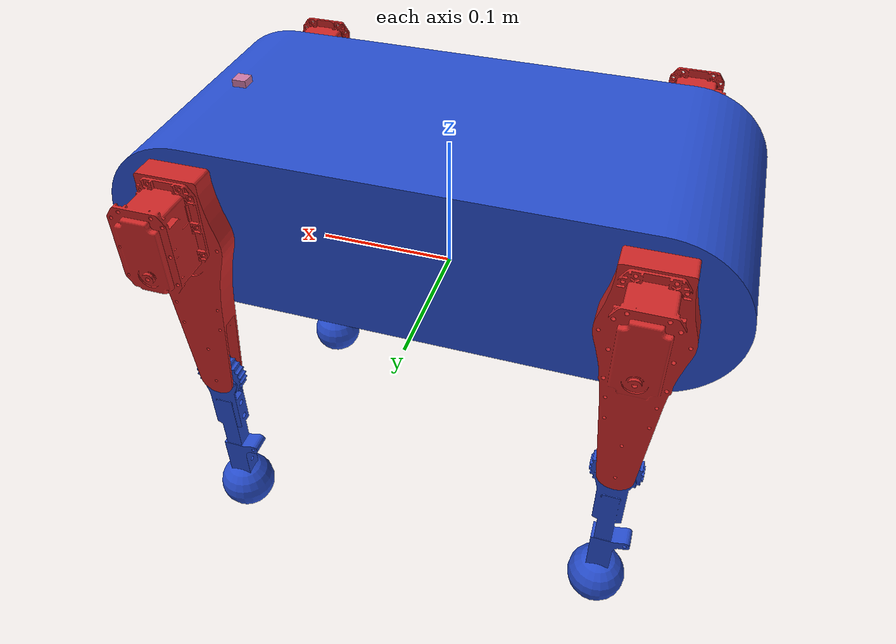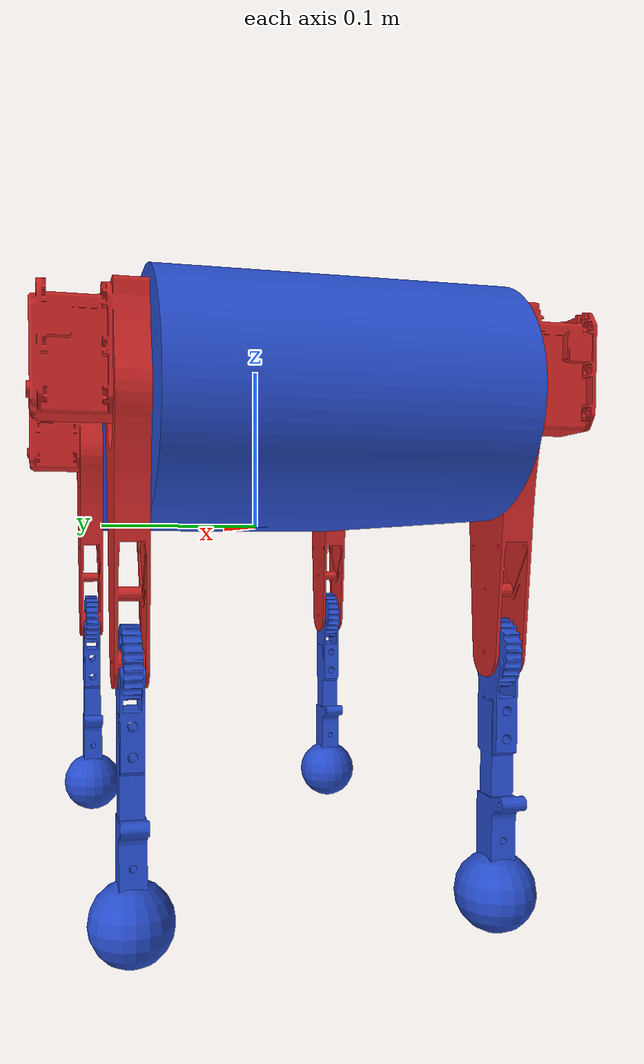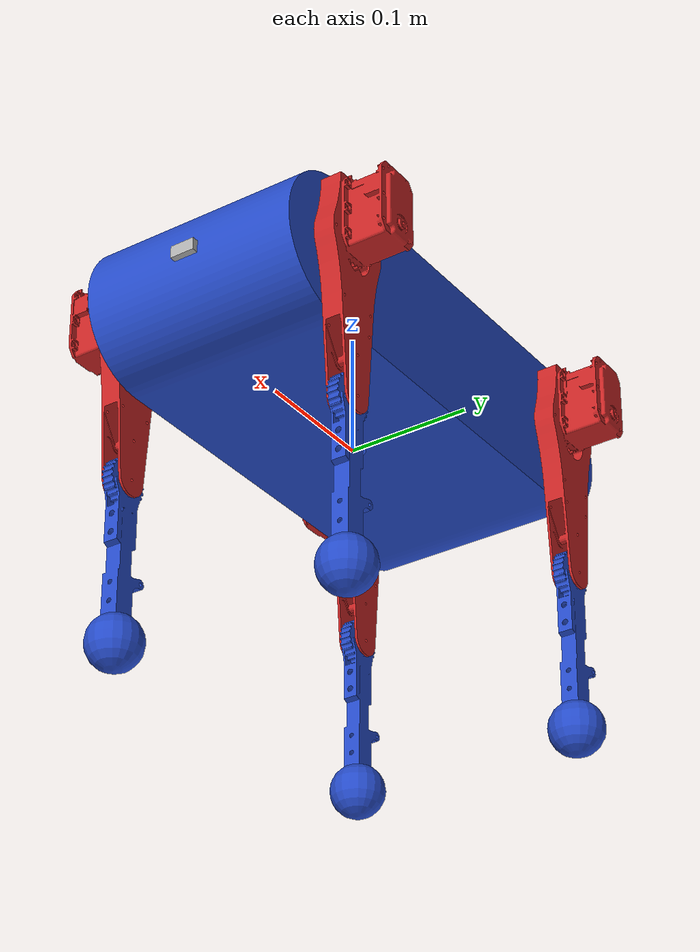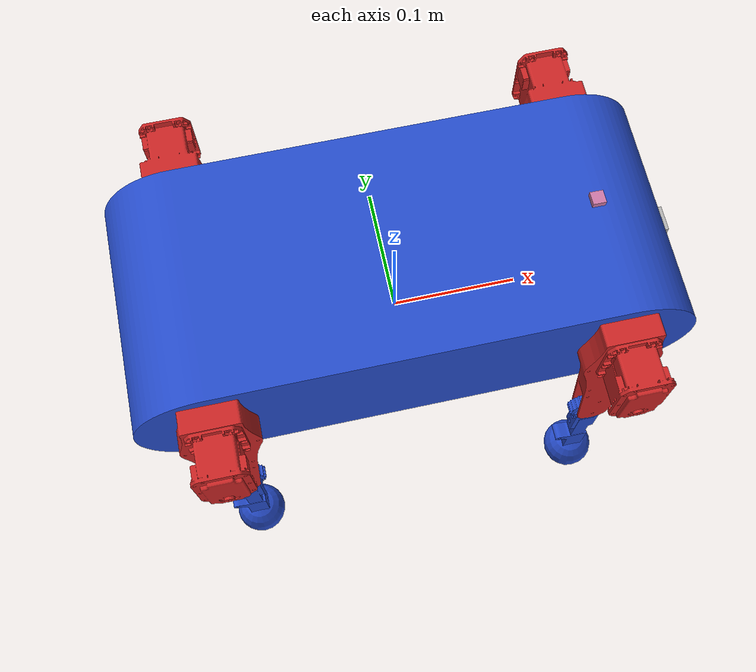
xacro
<?xml version="1.0"?>
<robot name="quadrupedal_robot" xmlns:xacro="https://ros.org/wiki/xacro">
	<xacro:macro name="link_macro" params="name ixx ixy ixz iyy iyz izz mass filename color">
		<link name="${name}">
			<inertial>
				<mass value="${mass}"/>
				<inertia ixx="${ixx}" ixy="${ixy}"  ixz="${ixz}" iyy="${iyy}" iyz="${iyz}" izz="${izz}"/>
			</inertial>
			<visual>
				<geometry>
					<mesh filename="${filename}"/>
				</geometry>
			</visual>
			<collision>
				<geometry>
					<mesh filename="${filename}"/>
				</geometry>
			</collision>
		</link>
		<gazebo reference="${name}">
			<mu1 value="1.0"/>
			<mu2 value="2.0"/>
			<kp value="1000000"/>
			<kd value="1.0"/>
			<material>Gazebo/${color}</material>
		</gazebo>
	</xacro:macro>

	<xacro:macro name="tip_link_macro" params="name ixx ixy ixz iyy iyz izz mass color">
		<link name="${name}">
			<inertial>
				<mass value="${mass}"/>
				<inertia ixx="${ixx}" ixy="${ixy}"  ixz="${ixz}" iyy="${iyy}" iyz="${iyz}" izz="${izz}"/>
			</inertial>
			<visual>
				<geometry>
					<sphere radius="0.022" />
				</geometry>
			</visual>
			<collision>
				<geometry>
					<sphere radius="0.022" />
				</geometry>
			</collision>
		</link>
		<gazebo reference="${name}">
			<mu1 value="1.0"/>
			<mu2 value="2.0"/>
			<kp value="10000000"/>
			<kd value="1.0"/>
			<material>Gazebo/${color}</material>
		</gazebo>
	</xacro:macro>

	<xacro:macro name="joint_macro" params="name x y z parent child type">
		<joint name="${name}" type="${type}">
			<parent link="${parent}"/>
			<child link="${child}"/>
			<axis xyz="0 1 0"/>
			<origin xyz="${x} ${y} ${z}" rpy="0 0 0"/>
			<dynamics damping="0.05"/>
			<limit lower="-2.5" upper="2.5" effort="8.0" velocity="6.0"/>
		</joint>
	</xacro:macro>

	<xacro:macro name="trans_macro" params="name joint_name act_name">
		<transmission name="${name}">
			<type>transmission_interface/SimpleTransmission</type>
			<joint name="${joint_name}">
				<hardwareInterface>hardware_interface/EffortJointInterface</hardwareInterface>
			</joint>
			<actuator name="${act_name}">
				<hardwareInterface>hardware_interface/EffortJointInterface</hardwareInterface>
				<mechanismReduction>1</mechanismReduction>
			</actuator>
		</transmission>
	</xacro:macro>

	<link name="world"/>
  <joint name="world_joint" type="floating">
		<parent link="world"/>
		<child link="body"/>
    <origin  rpy="0 0 0" xyz="0 0 0"/>
	</joint>

	<xacro:link_macro name="body" ixx="0.013997409758" ixy="0.0"  ixz="0.0" iyy="0.032039793016" iyz="0.0" izz="0.029239204023" mass="1.43533" filename="package://quadrupedal_description/meshes/stl/body_assem_alt.stl" color="Blue"/>

  <xacro:joint_macro name="body_joint1" x="0.15" y="-0.107" z="0.06" parent="body" child="upper_link1" type="revolute"/>
	<xacro:trans_macro name="body_joint_trans1" joint_name="body_joint1" act_name="body_motor1"/>
	<xacro:link_macro name="upper_link1" ixx="0.0005696021" ixy="-0.000000000098" ixz="-0.000000000243" iyy="0.000513795097" iyz="0.000074601225" izz="0.000137674903" mass="0.307" filename="package://quadrupedal_description/meshes/stl/upper_leg_alt.stl" color="Red"/>
	<xacro:joint_macro name="upper_joint1" x="0" y="0.00425" z="-0.130" parent="upper_link1" child="under_link1" type="revolute"/>
	<xacro:trans_macro name="upper_joint_trans1" joint_name="upper_joint1" act_name="upper_motor1"/>
	<xacro:link_macro name="under_link1" ixx="0.000400596397" ixy="0.000000183755" ixz="-0.000003142145" iyy="0.00040165997" iyz="0.000020733392" izz="0.000006738557" mass="0.080527" filename="package://quadrupedal_description/meshes/stl/under_leg_alt.stl" color="Blue"/>

	<xacro:joint_macro name="tip_joint1" x="0" y="0.0045" z="-0.130" parent="under_link1" child="tip_link1" type="fixed"/>
	<xacro:tip_link_macro name="tip_link1" ixx="0.0003136" ixy="0.0" ixz="0.0" iyy="0.0003136" iyz="0.0" izz="0.0003136" mass="0.02" color="Blue"/>

  <xacro:joint_macro name="body_joint2" x="-0.15" y="-0.107" z="0.06" parent="body" child="upper_link2" type="revolute"/>
	<xacro:trans_macro name="body_joint_trans2" joint_name="body_joint2" act_name="body_motor2"/>
	<xacro:link_macro name="upper_link2" ixx="0.0005696021" ixy="-0.000000000098" ixz="-0.000000000243" iyy="0.000513795097" iyz="0.000074601225" izz="0.000137674903" mass="0.307" filename="package://quadrupedal_description/meshes/stl/upper_leg_alt.stl" color="Red"/>
	<xacro:joint_macro name="upper_joint2" x="0" y="0.00425" z="-0.130" parent="upper_link2" child="under_link2" type="revolute"/>
	<xacro:trans_macro name="upper_joint_trans2" joint_name="upper_joint2" act_name="upper_motor2"/>
	<xacro:link_macro name="under_link2" ixx="0.000400596397" ixy="0.000000183755" ixz="-0.000003142145" iyy="0.00040165997" iyz="0.000020733392" izz="0.000006738557" mass="0.080527" filename="package://quadrupedal_description/meshes/stl/under_leg_alt.stl" color="Blue"/>

	<xacro:joint_macro name="tip_joint2" x="0" y="0.0045" z="-0.130" parent="under_link2" child="tip_link2" type="fixed"/>
	<xacro:tip_link_macro name="tip_link2" ixx="0.000001936" ixy="0.0" ixz="0.0" iyy="0.000001936" iyz="0.0" izz="0.000001936" mass="0.02" color="Blue"/>

  <xacro:joint_macro name="body_joint3" x="-0.15" y="0.107" z="0.06" parent="body" child="upper_link3" type="revolute"/>
	<xacro:trans_macro name="body_joint_trans3" joint_name="body_joint3" act_name="body_motor3"/>
	<xacro:link_macro name="upper_link3" ixx="0.000569601994" ixy="0.0000000001" ixz="-0.000000000243" iyy="0.000513795026" iyz="-0.000074601184" izz="0.000137674854" mass="0.307" filename="package://quadrupedal_description/meshes/stl/upper_leg_left_ease_alt.stl" color="Red"/>
	<xacro:joint_macro name="upper_joint3" x="0" y="-0.00425" z="-0.130" parent="upper_link3" child="under_link3" type="revolute"/>
	<xacro:trans_macro name="upper_joint_trans3" joint_name="upper_joint3" act_name="upper_motor3"/>
	<xacro:link_macro name="under_link3" ixx="0.000400596397" ixy="-0.000000183755" ixz="-0.000003142145" iyy="0.00040165997" iyz="-0.000020733392" izz="0.000006738557" mass="0.080527" filename="package://quadrupedal_description/meshes/stl/under_leg_left_ease_alt.stl" color="Blue"/>

	<xacro:joint_macro name="tip_joint3" x="0" y="-0.0045" z="-0.130" parent="under_link3" child="tip_link3" type="fixed"/>
	<xacro:tip_link_macro name="tip_link3" ixx="0.000001936" ixy="0.0" ixz="0.0" iyy="0.000001936" iyz="0.0" izz="0.000001936" mass="0.02" color="Blue"/>

  <xacro:joint_macro name="body_joint4" x="0.15" y="0.107" z="0.06" parent="body" child="upper_link4" type="revolute"/>
	<xacro:trans_macro name="body_joint_trans4" joint_name="body_joint4" act_name="body_motor4"/>
	<xacro:link_macro name="upper_link4" ixx="0.000569601994" ixy="0.0000000001" ixz="-0.000000000243" iyy="0.000513795026" iyz="-0.000074601184" izz="0.000137674854" mass="0.307" filename="package://quadrupedal_description/meshes/stl/upper_leg_left_ease_alt.stl" color="Red"/>
	<xacro:joint_macro name="upper_joint4" x="0" y="-0.00425" z="-0.130" parent="upper_link4" child="under_link4" type="revolute"/>
	<xacro:trans_macro name="upper_joint_trans4" joint_name="upper_joint4" act_name="upper_motor4"/>
	<xacro:link_macro name="under_link4" ixx="0.000400596397" ixy="-0.000000183755" ixz="-0.000003142145" iyy="0.00040165997" iyz="-0.000020733392" izz="0.000006738557" mass="0.080527" filename="package://quadrupedal_description/meshes/stl/under_leg_left_ease_alt.stl" color="Blue"/>

	<xacro:joint_macro name="tip_joint4" x="0" y="-0.0045" z="-0.130" parent="under_link4" child="tip_link4" type="fixed"/>
	<xacro:tip_link_macro name="tip_link4" ixx="0.000001936" ixy="0.0" ixz="0.0" iyy="0.000001936" iyz="0.0" izz="0.000001936" mass="0.02" color="Blue"/>

	<!--IMU-->
	<joint name="imu_joint" type="fixed">
		<parent link="body"/>
		<child link="imu_link"/>
		<origin xyz="0.15 0 0.12" rpy="0 0 0"/>
	</joint>
	<link name="imu_link">
		<visual>
			<geometry>
				<box size="0.01 0.01 0.01"/>
			</geometry>
		</visual>
	</link>
	<gazebo reference="imu_link">
		<gravity>true</gravity>
		<sensor name="imu_sensor" type="imu">
			<always_on>true</always_on>
			<update_rate>100</update_rate>
			<visualize>true</visualize>
			<topic>data</topic>
			<plugin filename="libgazebo_ros_imu_sensor.so" name="imu_plugin">
				<topicName>imu</topicName>
				<bodyName>imu_link</bodyName>
        <updateRateHZ>10.0</updateRateHZ>
        <gaussianNoise>0.0</gaussianNoise>
        <xyzOffset>0 0 0</xyzOffset>
        <rpyOffset>0 0 0</rpyOffset>
        <frameName>imu_link</frameName>
			</plugin>
			<pose>0 0 0 0 0 0</pose>
		</sensor>
	</gazebo>

	<!--Depth camera (unable)-->
	<joint name="depth_camera_joint" type="fixed">
		<parent link="body"/>
		<child link="depth_link"/>
		<origin xyz="0.21 0 0.06" rpy="0 0 0"/>
	</joint>
	<link name="depth_link">
		<visual>
			<geometry>
				<box size="0.01 0.02 0.01"/>
			</geometry>
		</visual>
	</link>

	<gazebo reference="depth_link">
  <sensor name="depth_camera" type="depth">
    <update_rate>20</update_rate>
    <camera>
      <horizontal_fov>1.047198</horizontal_fov>
      <image>
        <width>640</width>
        <height>480</height>
        <format>R8G8B8</format>
      </image>
      <clip>
        <near>0.05</near>
        <far>3</far>
      </clip>
    </camera>
    <plugin name="depth_camera_controller" filename="libgazebo_ros_openni_kinect.so">
      <baseline>0.2</baseline>
      <alwaysOn>true</alwaysOn>
      <updateRate>1.0</updateRate>
      <cameraName>depth_camera_ir</cameraName>
      <imageTopicName>/depth_camera/depth/image_raw</imageTopicName>
      <cameraInfoTopicName>/depth_camera/depth/camera_info</cameraInfoTopicName>
      <depthImageTopicName>/depth_camera/depth/image_raw</depthImageTopicName>
      <depthImageInfoTopicName>/depth_camera/depth/camera_info</depthImageInfoTopicName>
      <pointCloudTopicName>/depth_camera/depth/points</pointCloudTopicName>
      <frameName>depth_camera</frameName>
      <pointCloudCutoff>0.5</pointCloudCutoff>
      <pointCloudCutoffMax>3.0</pointCloudCutoffMax>
      <distortionK1>0.00000001</distortionK1>
      <distortionK2>0.00000001</distortionK2>
      <distortionK3>0.00000001</distortionK3>
      <distortionT1>0.00000001</distortionT1>
      <distortionT2>0.00000001</distortionT2>
      <CxPrime>0</CxPrime>
      <Cx>0</Cx>
      <Cy>0</Cy>
      <focalLength>0</focalLength>
      <hackBaseline>0</hackBaseline>
    </plugin>
  </sensor>
</gazebo>

	<gazebo>
		<plugin name="gazebo_ros_control" filename="libgazebo_ros_control.so">
			<robotNamespace>/quadrupedal_robot</robotNamespace>
		</plugin>
	</gazebo>

	<gazebo>
		<plugin name="joint_state_publisher" filename="libgazebo_ros_joint_state_publisher.so">
      <robotNamespace>/quadrupedal_robot</robotNamespace>
      <jointName>body_joint1, body_joint2, body_joint3, body_joint4, upper_joint1, upper_joint2, upper_joint3, upper_joint4</jointName>
      <updateRate>60.0</updateRate>
      <alwaysOn>true</alwaysOn>
    </plugin>
  </gazebo>
</robot>
